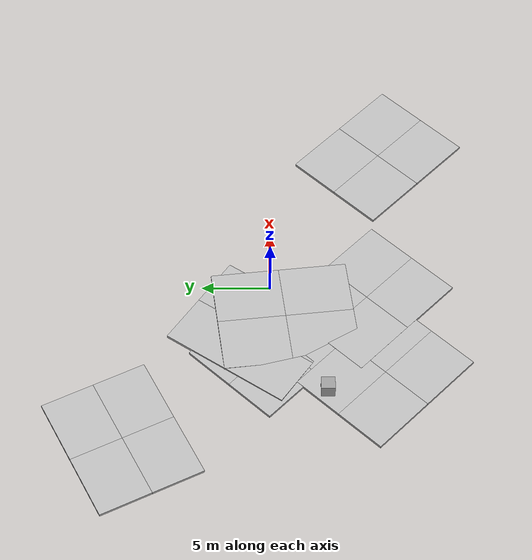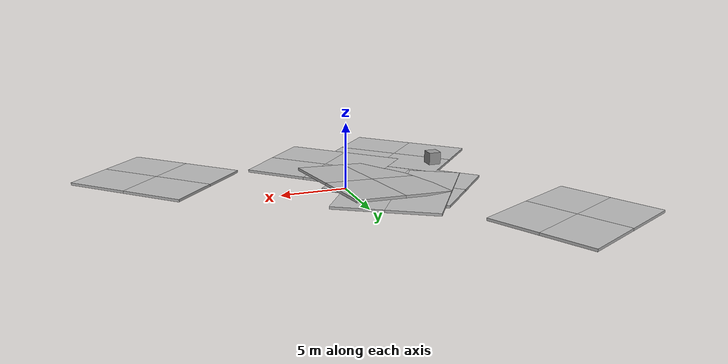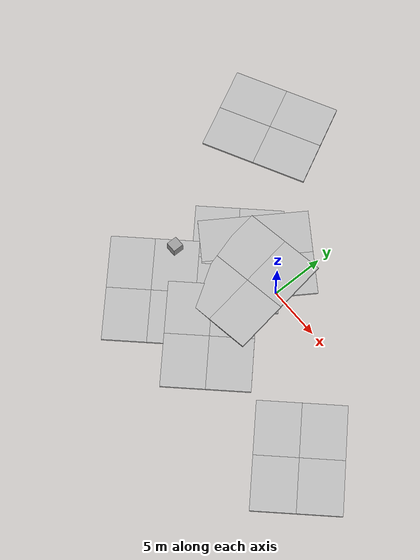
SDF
<sdf version="1.7">
 <world name="default">
  <scene>
   <sky><clouds><speed>12</speed></clouds></sky>
   <ambient>1 1 1 1</ambient>
   <shadows>1</shadows>
   <background>0.7 0.7 0.7 1</background>
  </scene>
  <light name="sun" type="directional">
   <pose>0 0 10 0 -0 0</pose>
   <diffuse>0.8 0.8 0.8 1</diffuse>
   <specular>0.2 0.2 0.2 1</specular>
   <attenuation>
    <range>1000</range>
    <constant>0.9</constant>
    <linear>0.01</linear>
    <quadratic>0.001</quadratic>
   </attenuation>
   <direction>-0.5 0.1 -0.9</direction>
   <spot><inner_angle>0</inner_angle><outer_angle>0</outer_angle><falloff>0</falloff></spot>
  </light>
  <gravity>0 0 -9.8</gravity>
  <magnetic_field>6e-06 2.3e-05 -4.2e-05</magnetic_field>
  <atmosphere type="adiabatic"/>
  <physics name="default_physics" default="0" type="ode">
   <max_step_size>0.001</max_step_size>
   <real_time_factor>1</real_time_factor>
   <real_time_update_rate>1000</real_time_update_rate>
  </physics>
  <spherical_coordinates>
   <surface_model>EARTH_WGS84</surface_model>
   <latitude_deg>0</latitude_deg>
   <longitude_deg>0</longitude_deg>
   <elevation>0</elevation>
   <heading_deg>0</heading_deg>
  </spherical_coordinates>
  <model name="mud_box">
   <static>1</static>
   <link name="link">
    <collision name="collision">
     <geometry><box><size>8 10 0.2</size></box></geometry>
     <surface><friction><ode><mu>0.15</mu><mu2>0.15</mu2></ode></friction></surface>
    </collision>
    <visual name="visual_1">
     <pose>-2 2.5 0 0 -0 0</pose>
     <cast_shadows>0</cast_shadows>
     <geometry><box><size>4 5 0.2</size></box></geometry>
     <material>
      <script>
       <uri>model://mud_box/materials/scripts</uri>
       <uri>model://mud_box/materials/textures</uri>
       <name>vrc/mud</name>
      </script>
     </material>
    </visual>
    <visual name="visual_2">
     <pose>2 2.5 0 0 -0 0</pose>
     <cast_shadows>0</cast_shadows>
     <geometry><box><size>4 5 0.2</size></box></geometry>
     <material>
      <script>
       <uri>model://mud_box/materials/scripts</uri>
       <uri>model://mud_box/materials/textures</uri>
       <name>vrc/mud</name>
      </script>
     </material>
    </visual>
    <visual name="visual_3">
     <pose>2 -2.5 0 0 -0 0</pose>
     <cast_shadows>0</cast_shadows>
     <geometry><box><size>4 5 0.2</size></box></geometry>
     <material>
      <script>
       <uri>model://mud_box/materials/scripts</uri>
       <uri>model://mud_box/materials/textures</uri>
       <name>vrc/mud</name>
      </script>
     </material>
    </visual>
    <visual name="visual_4">
     <pose>-2 -2.5 0 0 -0 0</pose>
     <cast_shadows>0</cast_shadows>
     <geometry><box><size>4 5 0.2</size></box></geometry>
     <material>
      <script>
       <uri>model://mud_box/materials/scripts</uri>
       <uri>model://mud_box/materials/textures</uri>
       <name>vrc/mud</name>
      </script>
     </material>
    </visual>
   </link>
   <pose>-7.38952 -8.26353 -0.194842 0 -0 0.810832</pose>
  </model>
  <model name="mud_box_clone">
   <static>1</static>
   <link name="link">
    <collision name="collision">
     <geometry><box><size>8 10 0.2</size></box></geometry>
     <surface><friction><ode><mu>0.15</mu><mu2>0.15</mu2></ode></friction></surface>
    </collision>
    <visual name="visual_1">
     <pose>-2 2.5 0 0 -0 0</pose>
     <cast_shadows>0</cast_shadows>
     <geometry><box><size>4 5 0.2</size></box></geometry>
     <material>
      <script>
       <uri>model://mud_box/materials/scripts</uri>
       <uri>model://mud_box/materials/textures</uri>
       <name>vrc/mud</name>
      </script>
     </material>
    </visual>
    <visual name="visual_2">
     <pose>2 2.5 0 0 -0 0</pose>
     <cast_shadows>0</cast_shadows>
     <geometry><box><size>4 5 0.2</size></box></geometry>
     <material>
      <script>
       <uri>model://mud_box/materials/scripts</uri>
       <uri>model://mud_box/materials/textures</uri>
       <name>vrc/mud</name>
      </script>
     </material>
    </visual>
    <visual name="visual_3">
     <pose>2 -2.5 0 0 -0 0</pose>
     <cast_shadows>0</cast_shadows>
     <geometry><box><size>4 5 0.2</size></box></geometry>
     <material>
      <script>
       <uri>model://mud_box/materials/scripts</uri>
       <uri>model://mud_box/materials/textures</uri>
       <name>vrc/mud</name>
      </script>
     </material>
    </visual>
    <visual name="visual_4">
     <pose>-2 -2.5 0 0 -0 0</pose>
     <cast_shadows>0</cast_shadows>
     <geometry><box><size>4 5 0.2</size></box></geometry>
     <material>
      <script>
       <uri>model://mud_box/materials/scripts</uri>
       <uri>model://mud_box/materials/textures</uri>
       <name>vrc/mud</name>
      </script>
     </material>
    </visual>
   </link>
   <pose>-0.691406 -7.08827 -0.193629 0 -0 0.810832</pose>
  </model>
  <model name="mud_box_clone_0_clone">
   <static>1</static>
   <link name="link">
    <collision name="collision">
     <geometry><box><size>8 10 0.2</size></box></geometry>
     <surface><friction><ode><mu>0.15</mu><mu2>0.15</mu2></ode></friction></surface>
    </collision>
    <visual name="visual_1">
     <pose>-2 2.5 0 0 -0 0</pose>
     <cast_shadows>0</cast_shadows>
     <geometry><box><size>4 5 0.2</size></box></geometry>
     <material>
      <script>
       <uri>model://mud_box/materials/scripts</uri>
       <uri>model://mud_box/materials/textures</uri>
       <name>vrc/mud</name>
      </script>
     </material>
    </visual>
    <visual name="visual_2">
     <pose>2 2.5 0 0 -0 0</pose>
     <cast_shadows>0</cast_shadows>
     <geometry><box><size>4 5 0.2</size></box></geometry>
     <material>
      <script>
       <uri>model://mud_box/materials/scripts</uri>
       <uri>model://mud_box/materials/textures</uri>
       <name>vrc/mud</name>
      </script>
     </material>
    </visual>
    <visual name="visual_3">
     <pose>2 -2.5 0 0 -0 0</pose>
     <cast_shadows>0</cast_shadows>
     <geometry><box><size>4 5 0.2</size></box></geometry>
     <material>
      <script>
       <uri>model://mud_box/materials/scripts</uri>
       <uri>model://mud_box/materials/textures</uri>
       <name>vrc/mud</name>
      </script>
     </material>
    </visual>
    <visual name="visual_4">
     <pose>-2 -2.5 0 0 -0 0</pose>
     <cast_shadows>0</cast_shadows>
     <geometry><box><size>4 5 0.2</size></box></geometry>
     <material>
      <script>
       <uri>model://mud_box/materials/scripts</uri>
       <uri>model://mud_box/materials/textures</uri>
       <name>vrc/mud</name>
      </script>
     </material>
    </visual>
   </link>
   <pose>-4.84072 -0.506546 -0.198586 0 -0 0.810832</pose>
  </model>
  <model name="mud_box_clone_2">
   <static>1</static>
   <link name="link">
    <collision name="collision">
     <geometry><box><size>8 10 0.2</size></box></geometry>
     <surface><friction><ode><mu>0.15</mu><mu2>0.15</mu2></ode></friction></surface>
    </collision>
    <visual name="visual_1">
     <pose>-2 2.5 0 0 -0 0</pose>
     <cast_shadows>0</cast_shadows>
     <geometry><box><size>4 5 0.2</size></box></geometry>
     <material>
      <script>
       <uri>model://mud_box/materials/scripts</uri>
       <uri>model://mud_box/materials/textures</uri>
       <name>vrc/mud</name>
      </script>
     </material>
    </visual>
    <visual name="visual_2">
     <pose>2 2.5 0 0 -0 0</pose>
     <cast_shadows>0</cast_shadows>
     <geometry><box><size>4 5 0.2</size></box></geometry>
     <material>
      <script>
       <uri>model://mud_box/materials/scripts</uri>
       <uri>model://mud_box/materials/textures</uri>
       <name>vrc/mud</name>
      </script>
     </material>
    </visual>
    <visual name="visual_3">
     <pose>2 -2.5 0 0 -0 0</pose>
     <cast_shadows>0</cast_shadows>
     <geometry><box><size>4 5 0.2</size></box></geometry>
     <material>
      <script>
       <uri>model://mud_box/materials/scripts</uri>
       <uri>model://mud_box/materials/textures</uri>
       <name>vrc/mud</name>
      </script>
     </material>
    </visual>
    <visual name="visual_4">
     <pose>-2 -2.5 0 0 -0 0</pose>
     <cast_shadows>0</cast_shadows>
     <geometry><box><size>4 5 0.2</size></box></geometry>
     <material>
      <script>
       <uri>model://mud_box/materials/scripts</uri>
       <uri>model://mud_box/materials/textures</uri>
       <name>vrc/mud</name>
      </script>
     </material>
    </visual>
   </link>
   <pose>12.9164 -8.31692 -0.193629 0 -0 0.810832</pose>
  </model>
  <model name="mud_box_clone_0_clone_0">
   <static>1</static>
   <link name="link">
    <collision name="collision">
     <geometry><box><size>8 10 0.2</size></box></geometry>
     <surface><friction><ode><mu>0.15</mu><mu2>0.15</mu2></ode></friction></surface>
    </collision>
    <visual name="visual_1">
     <pose>-2 2.5 0 0 -0 0</pose>
     <cast_shadows>0</cast_shadows>
     <geometry><box><size>4 5 0.2</size></box></geometry>
     <material>
      <script>
       <uri>model://mud_box/materials/scripts</uri>
       <uri>model://mud_box/materials/textures</uri>
       <name>vrc/mud</name>
      </script>
     </material>
    </visual>
    <visual name="visual_2">
     <pose>2 2.5 0 0 -0 0</pose>
     <cast_shadows>0</cast_shadows>
     <geometry><box><size>4 5 0.2</size></box></geometry>
     <material>
      <script>
       <uri>model://mud_box/materials/scripts</uri>
       <uri>model://mud_box/materials/textures</uri>
       <name>vrc/mud</name>
      </script>
     </material>
    </visual>
    <visual name="visual_3">
     <pose>2 -2.5 0 0 -0 0</pose>
     <cast_shadows>0</cast_shadows>
     <geometry><box><size>4 5 0.2</size></box></geometry>
     <material>
      <script>
       <uri>model://mud_box/materials/scripts</uri>
       <uri>model://mud_box/materials/textures</uri>
       <name>vrc/mud</name>
      </script>
     </material>
    </visual>
    <visual name="visual_4">
     <pose>-2 -2.5 0 0 -0 0</pose>
     <cast_shadows>0</cast_shadows>
     <geometry><box><size>4 5 0.2</size></box></geometry>
     <material>
      <script>
       <uri>model://mud_box/materials/scripts</uri>
       <uri>model://mud_box/materials/textures</uri>
       <name>vrc/mud</name>
      </script>
     </material>
    </visual>
   </link>
   <pose>-13.0759 10.3805 -0.164534 -0.010035 -0.002014 2.03757</pose>
  </model>
  <model name="mud_box_clone_0">
   <static>1</static>
   <link name="link">
    <collision name="collision">
     <geometry><box><size>8 10 0.2</size></box></geometry>
     <surface><friction><ode><mu>0.15</mu><mu2>0.15</mu2></ode></friction></surface>
    </collision>
    <visual name="visual_1">
     <pose>-2 2.5 0 0 -0 0</pose>
     <cast_shadows>0</cast_shadows>
     <geometry><box><size>4 5 0.2</size></box></geometry>
     <material>
      <script>
       <uri>model://mud_box/materials/scripts</uri>
       <uri>model://mud_box/materials/textures</uri>
       <name>vrc/mud</name>
      </script>
     </material>
    </visual>
    <visual name="visual_2">
     <pose>2 2.5 0 0 -0 0</pose>
     <cast_shadows>0</cast_shadows>
     <geometry><box><size>4 5 0.2</size></box></geometry>
     <material>
      <script>
       <uri>model://mud_box/materials/scripts</uri>
       <uri>model://mud_box/materials/textures</uri>
       <name>vrc/mud</name>
      </script>
     </material>
    </visual>
    <visual name="visual_3">
     <pose>2 -2.5 0 0 -0 0</pose>
     <cast_shadows>0</cast_shadows>
     <geometry><box><size>4 5 0.2</size></box></geometry>
     <material>
      <script>
       <uri>model://mud_box/materials/scripts</uri>
       <uri>model://mud_box/materials/textures</uri>
       <name>vrc/mud</name>
      </script>
     </material>
    </visual>
    <visual name="visual_4">
     <pose>-2 -2.5 0 0 -0 0</pose>
     <cast_shadows>0</cast_shadows>
     <geometry><box><size>4 5 0.2</size></box></geometry>
     <material>
      <script>
       <uri>model://mud_box/materials/scripts</uri>
       <uri>model://mud_box/materials/textures</uri>
       <name>vrc/mud</name>
      </script>
     </material>
    </visual>
   </link>
   <pose>-3.80408 1.07655 -0.176565 -0.003744 -0.023004 2.54614</pose>
  </model>
  <model name="mud_box_clone_0_clone_clone">
   <static>1</static>
   <link name="link">
    <collision name="collision">
     <geometry><box><size>8 10 0.2</size></box></geometry>
     <surface><friction><ode><mu>0.15</mu><mu2>0.15</mu2></ode></friction></surface>
    </collision>
    <visual name="visual_1">
     <pose>-2 2.5 0 0 -0 0</pose>
     <cast_shadows>0</cast_shadows>
     <geometry><box><size>4 5 0.2</size></box></geometry>
     <material>
      <script>
       <uri>model://mud_box/materials/scripts</uri>
       <uri>model://mud_box/materials/textures</uri>
       <name>vrc/mud</name>
      </script>
     </material>
    </visual>
    <visual name="visual_2">
     <pose>2 2.5 0 0 -0 0</pose>
     <cast_shadows>0</cast_shadows>
     <geometry><box><size>4 5 0.2</size></box></geometry>
     <material>
      <script>
       <uri>model://mud_box/materials/scripts</uri>
       <uri>model://mud_box/materials/textures</uri>
       <name>vrc/mud</name>
      </script>
     </material>
    </visual>
    <visual name="visual_3">
     <pose>2 -2.5 0 0 -0 0</pose>
     <cast_shadows>0</cast_shadows>
     <geometry><box><size>4 5 0.2</size></box></geometry>
     <material>
      <script>
       <uri>model://mud_box/materials/scripts</uri>
       <uri>model://mud_box/materials/textures</uri>
       <name>vrc/mud</name>
      </script>
     </material>
    </visual>
    <visual name="visual_4">
     <pose>-2 -2.5 0 0 -0 0</pose>
     <cast_shadows>0</cast_shadows>
     <geometry><box><size>4 5 0.2</size></box></geometry>
     <material>
      <script>
       <uri>model://mud_box/materials/scripts</uri>
       <uri>model://mud_box/materials/textures</uri>
       <name>vrc/mud</name>
      </script>
     </material>
    </visual>
   </link>
   <pose>-2.55369 -1.13782 0.065262 0.029581 -0.066563 0.134096</pose>
  </model>
  <model name="unit_box">
   <pose>-9.07746 -4.10833 0.5 0 -0 0</pose>
   <link name="link">
    <inertial>
     <mass>1</mass>
     <inertia>
      <ixx>0.166667</ixx>
      <ixy>0</ixy>
      <ixz>0</ixz>
      <iyy>0.166667</iyy>
      <iyz>0</iyz>
      <izz>0.166667</izz>
     </inertia>
    </inertial>
    <collision name="collision"><geometry><box><size>1 1 1</size></box></geometry></collision>
    <visual name="visual">
     <geometry><box><size>1 1 1</size></box></geometry>
     <material>
      <script><name>Gazebo/Grey</name><uri>file://media/materials/scripts/gazebo.material</uri></script>
     </material>
    </visual>
   </link>
  </model>
 </world>
</sdf>
